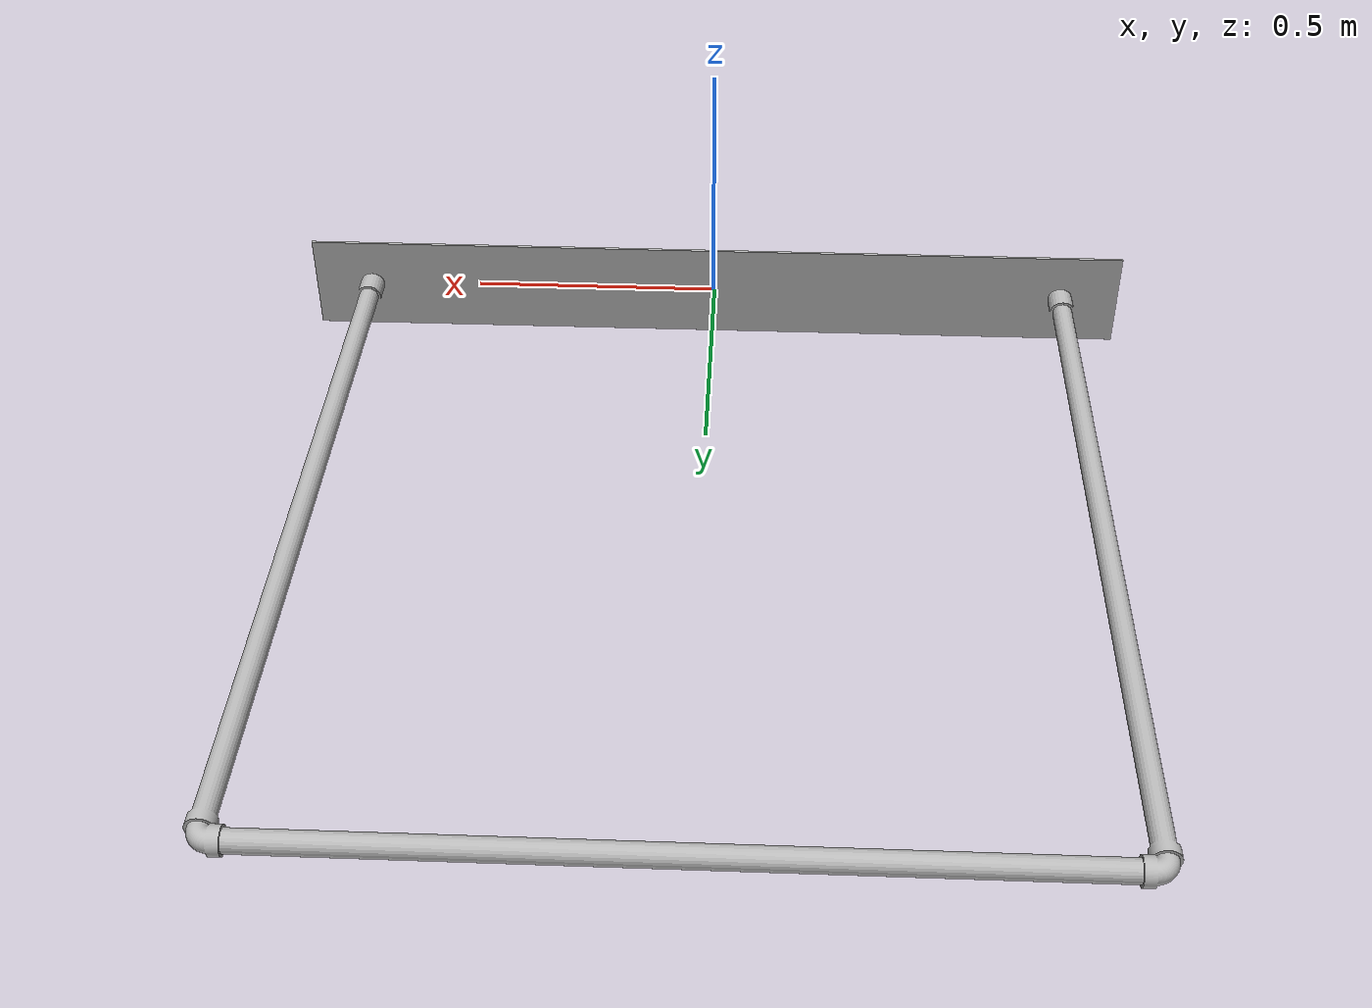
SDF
<?xml version="1.0"?>
<sdf version="1.5">
    <model name="sauvc2022_gate">
        <static>false</static>
        <link name="link">
            <collision name="collision">
                <geometry>
                    <mesh>
                        <uri>model://sauvc2022_gate/meshes/Gate.obj</uri>
                    </mesh>
                </geometry>
                <surface>
                    <friction>
                        <ode>
                            <mu>100</mu>
                            <mu2>50</mu2>
                        </ode>
                    </friction>
                </surface>
            </collision>
            <visual name="visual">
                <geometry>
                    <mesh>
                        <uri>model://sauvc2022_gate/meshes/Gate.obj</uri>
                    </mesh>
                </geometry>
                <material>
                    <script>
                        <uri>model://sauvc2022_gate/meshes/Gate.mtl</uri>
                        <name>sauvc2022_gate/material</name>
                    </script>
                </material>
            </visual>
        </link>
    </model>
</sdf>
